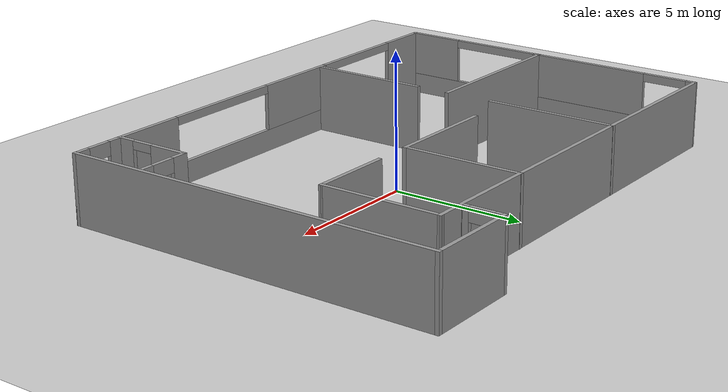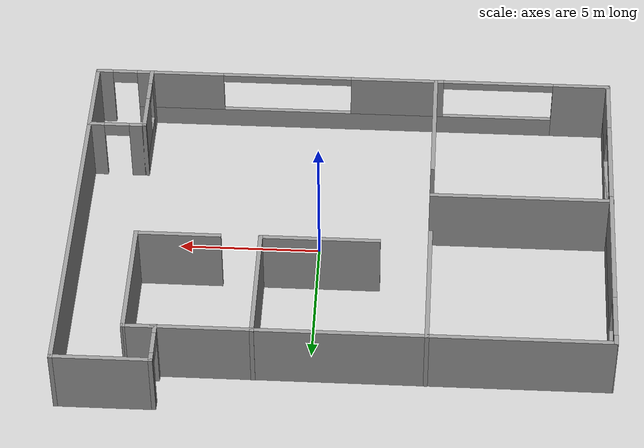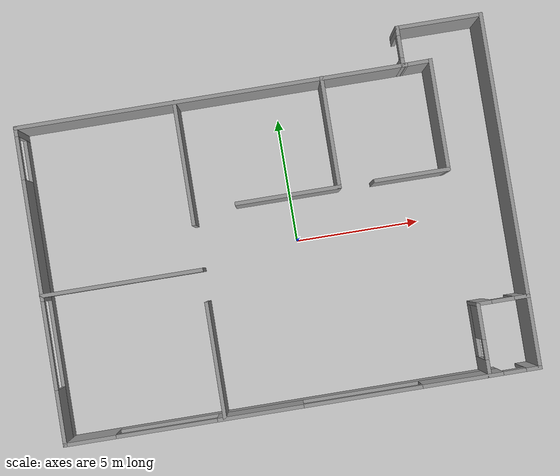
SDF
<?xml version="1.0" ?>
<sdf version="1.6">
  <world name="default">
    <physics name="1ms" type="ignored">
      <max_step_size>0.001</max_step_size>
      <real_time_factor>1.0</real_time_factor>
    </physics>
    <plugin
      filename="gz-sim-physics-system"
      name="gz::sim::systems::Physics">
    </plugin>
    <plugin
      filename="gz-sim-air-pressure-system"
      name="gz::sim::systems::AirPressure">
    </plugin>
    <plugin
      filename="gz-sim-altimeter-system"
      name="gz::sim::systems::Altimeter">
    </plugin>
    <plugin
      filename="gz-sim-imu-system"
      name="gz::sim::systems::Imu">
    </plugin>
    <plugin
      filename="gz-sim-sensors-system"
      name="gz::sim::systems::Sensors">
      <render_engine>ogre2</render_engine>
    </plugin>
    <plugin
      filename="gz-sim-magnetometer-system"
      name="gz::sim::systems::Magnetometer">
    </plugin>
    <plugin
      filename="gz-sim-forcetorque-system"
      name="gz::sim::systems::ForceTorque">
    </plugin>
    <plugin
      filename="gz-sim-user-commands-system"
      name="gz::sim::systems::UserCommands">
    </plugin>
    <plugin
      filename="gz-sim-scene-broadcaster-system"
      name="gz::sim::systems::SceneBroadcaster">
    </plugin>
    <plugin
      filename="xbot2_gz_clock"
      name="gz::sim::systems::GzClockPlugin">
    </plugin>

    <light type="directional" name="sun">
      <cast_shadows>true</cast_shadows>
      <pose>0 0 10 0 0 0</pose>
      <diffuse>0.8 0.8 0.8 1</diffuse>
      <specular>0.2 0.2 0.2 1</specular>
      <attenuation>
        <range>1000</range>
        <constant>0.9</constant>
        <linear>0.01</linear>
        <quadratic>0.001</quadratic>
      </attenuation>
      <direction>-0.5 0.1 -0.9</direction>
    </light>

    <model name="ground_plane">
      <static>true</static>
      <link name="link">
        <collision name="collision">
          <geometry>
            <plane>
              <normal>0 0 1</normal>
              <size>100 100</size>
            </plane>
          </geometry>
        </collision>
        <visual name="visual">
          <geometry>
            <plane>
              <normal>0 0 1</normal>
              <size>100 100</size>
            </plane>
          </geometry>
          <material>
            <ambient>0.8 0.8 0.8 1</ambient>
            <diffuse>0.8 0.8 0.8 1</diffuse>
            <specular>0.8 0.8 0.8 1</specular>
          </material>
        </visual>
      </link>
    </model>

    <model name='TrossenRoboticsOfficeBuilding'>
    <pose>-0.879095 0.576025 0 0 -0 0</pose>
    <link name='Wall_0'>
      <pose>-9.41899 -0.749926 0 0 -0 -1.5708</pose>
      <visual name='Wall_0_Visual_0'>
        <pose>-6.1662 0 1.25 0 -0 0</pose>
        <geometry>
          <box>
            <size>0.417592 0.15 2.5</size>
          </box>
        </geometry>
        <material>
          <script>
            <uri>file://media/materials/scripts/gazebo.material</uri>
            <name>Gazebo/Grey</name>
          </script>
          <ambient>1 1 1 1</ambient>
        </material>
        <meta>
          <layer>0</layer>
        </meta>
      </visual>
      <collision name='Wall_0_Collision_0'>
        <geometry>
          <box>
            <size>0.417592 0.15 2.5</size>
          </box>
        </geometry>
        <pose>-6.1662 0 1.25 0 -0 0</pose>
      </collision>
      <visual name='Wall_0_Visual_1'>
        <pose>0.208796 0 0.4 0 -0 0</pose>
        <geometry>
          <box>
            <size>12.3324 0.15 0.8</size>
          </box>
        </geometry>
        <material>
          <script>
            <uri>file://media/materials/scripts/gazebo.material</uri>
            <name>Gazebo/Grey</name>
          </script>
          <ambient>1 1 1 1</ambient>
        </material>
        <meta>
          <layer>0</layer>
        </meta>
      </visual>
      <collision name='Wall_0_Collision_1'>
        <geometry>
          <box>
            <size>12.3324 0.15 0.8</size>
          </box>
        </geometry>
        <pose>0.208796 0 0.4 0 -0 0</pose>
      </collision>
      <visual name='Wall_0_Visual_2'>
        <pose>-1.80949 0 1.65 0 -0 0</pose>
        <geometry>
          <box>
            <size>4.84784 0.15 1.7</size>
          </box>
        </geometry>
        <material>
          <script>
            <uri>file://media/materials/scripts/gazebo.material</uri>
            <name>Gazebo/Grey</name>
          </script>
          <ambient>1 1 1 1</ambient>
        </material>
        <meta>
          <layer>0</layer>
        </meta>
      </visual>
      <collision name='Wall_0_Collision_2'>
        <geometry>
          <box>
            <size>4.84784 0.15 1.7</size>
          </box>
        </geometry>
        <pose>-1.80949 0 1.65 0 -0 0</pose>
      </collision>
      <visual name='Wall_0_Visual_3'>
        <pose>5.25622 0 1.65 0 -0 0</pose>
        <geometry>
          <box>
            <size>2.23757 0.15 1.7</size>
          </box>
        </geometry>
        <material>
          <script>
            <uri>file://media/materials/scripts/gazebo.material</uri>
            <name>Gazebo/Grey</name>
          </script>
          <ambient>1 1 1 1</ambient>
        </material>
        <meta>
          <layer>0</layer>
        </meta>
      </visual>
      <collision name='Wall_0_Collision_3'>
        <geometry>
          <box>
            <size>2.23757 0.15 1.7</size>
          </box>
        </geometry>
        <pose>5.25622 0 1.65 0 -0 0</pose>
      </collision>
      <visual name='Wall_0_Visual_4'>
        <pose>2.37593 0 0.8 0 -0 0</pose>
        <geometry>
          <box>
            <size>3.523 0.15 0</size>
          </box>
        </geometry>
        <material>
          <script>
            <uri>file://media/materials/scripts/gazebo.material</uri>
            <name>Gazebo/Grey</name>
          </script>
          <ambient>1 1 1 1</ambient>
        </material>
        <meta>
          <layer>0</layer>
        </meta>
      </visual>
      <collision name='Wall_0_Collision_4'>
        <geometry>
          <box>
            <size>3.523 0.15 0</size>
          </box>
        </geometry>
        <pose>2.37593 0 0.8 0 -0 0</pose>
      </collision>
      <visual name='Wall_0_Visual_5'>
        <pose>-5.09541 0 2.35 0 -0 0</pose>
        <geometry>
          <box>
            <size>1.724 0.15 0.3</size>
          </box>
        </geometry>
        <material>
          <script>
            <uri>file://media/materials/scripts/gazebo.material</uri>
            <name>Gazebo/Grey</name>
          </script>
          <ambient>1 1 1 1</ambient>
        </material>
        <meta>
          <layer>0</layer>
        </meta>
      </visual>
      <collision name='Wall_0_Collision_5'>
        <geometry>
          <box>
            <size>1.724 0.15 0.3</size>
          </box>
        </geometry>
        <pose>-5.09541 0 2.35 0 -0 0</pose>
      </collision>
      <visual name='Wall_0_Visual_6'>
        <pose>2.37593 0 2.35 0 -0 0</pose>
        <geometry>
          <box>
            <size>3.523 0.15 0.3</size>
          </box>
        </geometry>
        <material>
          <script>
            <uri>file://media/materials/scripts/gazebo.material</uri>
            <name>Gazebo/Grey</name>
          </script>
          <ambient>1 1 1 1</ambient>
        </material>
        <meta>
          <layer>0</layer>
        </meta>
      </visual>
      <collision name='Wall_0_Collision_6'>
        <geometry>
          <box>
            <size>3.523 0.15 0.3</size>
          </box>
        </geometry>
        <pose>2.37593 0 2.35 0 -0 0</pose>
      </collision>
    </link>
    <link name='Wall_1'>
      <pose>0.006011 -7.04993 0 0 -0 0</pose>
      <visual name='Wall_1_Visual_0'>
        <pose>-8.45251 0 1.25 0 -0 0</pose>
        <geometry>
          <box>
            <size>2.09499 0.15 2.5</size>
          </box>
        </geometry>
        <material>
          <script>
            <uri>file://media/materials/scripts/gazebo.material</uri>
            <name>Gazebo/Grey</name>
          </script>
          <ambient>1 1 1 1</ambient>
        </material>
        <meta>
          <layer>0</layer>
        </meta>
      </visual>
      <collision name='Wall_1_Collision_0'>
        <geometry>
          <box>
            <size>2.09499 0.15 2.5</size>
          </box>
        </geometry>
        <pose>-8.45251 0 1.25 0 -0 0</pose>
      </collision>
      <visual name='Wall_1_Visual_1'>
        <pose>9.18754 0 1.25 0 -0 0</pose>
        <geometry>
          <box>
            <size>0.624916 0.15 2.5</size>
          </box>
        </geometry>
        <material>
          <script>
            <uri>file://media/materials/scripts/gazebo.material</uri>
            <name>Gazebo/Grey</name>
          </script>
          <ambient>1 1 1 1</ambient>
        </material>
        <meta>
          <layer>0</layer>
        </meta>
      </visual>
      <collision name='Wall_1_Collision_1'>
        <geometry>
          <box>
            <size>0.624916 0.15 2.5</size>
          </box>
        </geometry>
        <pose>9.18754 0 1.25 0 -0 0</pose>
      </collision>
      <visual name='Wall_1_Visual_2'>
        <pose>0.285035 0 0.4 0 -0 0</pose>
        <geometry>
          <box>
            <size>15.3801 0.15 0.8</size>
          </box>
        </geometry>
        <material>
          <script>
            <uri>file://media/materials/scripts/gazebo.material</uri>
            <name>Gazebo/Grey</name>
          </script>
          <ambient>1 1 1 1</ambient>
        </material>
        <meta>
          <layer>0</layer>
        </meta>
      </visual>
      <collision name='Wall_1_Collision_2'>
        <geometry>
          <box>
            <size>15.3801 0.15 0.8</size>
          </box>
        </geometry>
        <pose>0.285035 0 0.4 0 -0 0</pose>
      </collision>
      <visual name='Wall_1_Visual_3'>
        <pose>-1.67035 0 1.65 0 -0 0</pose>
        <geometry>
          <box>
            <size>3.42869 0.15 1.7</size>
          </box>
        </geometry>
        <material>
          <script>
            <uri>file://media/materials/scripts/gazebo.material</uri>
            <name>Gazebo/Grey</name>
          </script>
          <ambient>1 1 1 1</ambient>
        </material>
        <meta>
          <layer>0</layer>
        </meta>
      </visual>
      <collision name='Wall_1_Collision_3'>
        <geometry>
          <box>
            <size>3.42869 0.15 1.7</size>
          </box>
        </geometry>
        <pose>-1.67035 0 1.65 0 -0 0</pose>
      </collision>
      <visual name='Wall_1_Visual_4'>
        <pose>6.36821 0 1.65 0 -0 0</pose>
        <geometry>
          <box>
            <size>3.21375 0.15 1.7</size>
          </box>
        </geometry>
        <material>
          <script>
            <uri>file://media/materials/scripts/gazebo.material</uri>
            <name>Gazebo/Grey</name>
          </script>
          <ambient>1 1 1 1</ambient>
        </material>
        <meta>
          <layer>0</layer>
        </meta>
      </visual>
      <collision name='Wall_1_Collision_4'>
        <geometry>
          <box>
            <size>3.21375 0.15 1.7</size>
          </box>
        </geometry>
        <pose>6.36821 0 1.65 0 -0 0</pose>
      </collision>
      <visual name='Wall_1_Visual_5'>
        <pose>8.42508 0 2.25 0 -0 0</pose>
        <geometry>
          <box>
            <size>0.9 0.15 0.5</size>
          </box>
        </geometry>
        <material>
          <script>
            <uri>file://media/materials/scripts/gazebo.material</uri>
            <name>Gazebo/Grey</name>
          </script>
          <ambient>1 1 1 1</ambient>
        </material>
        <meta>
          <layer>0</layer>
        </meta>
      </visual>
      <collision name='Wall_1_Collision_5'>
        <geometry>
          <box>
            <size>0.9 0.15 0.5</size>
          </box>
        </geometry>
        <pose>8.42508 0 2.25 0 -0 0</pose>
      </collision>
      <visual name='Wall_1_Visual_6'>
        <pose>-5.39486 0 2.35 0 -0 0</pose>
        <geometry>
          <box>
            <size>4.02031 0.15 0.3</size>
          </box>
        </geometry>
        <material>
          <script>
            <uri>file://media/materials/scripts/gazebo.material</uri>
            <name>Gazebo/Grey</name>
          </script>
          <ambient>1 1 1 1</ambient>
        </material>
        <meta>
          <layer>0</layer>
        </meta>
      </visual>
      <collision name='Wall_1_Collision_6'>
        <geometry>
          <box>
            <size>4.02031 0.15 0.3</size>
          </box>
        </geometry>
        <pose>-5.39486 0 2.35 0 -0 0</pose>
      </collision>
      <visual name='Wall_1_Visual_7'>
        <pose>2.40266 0 2.35 0 -0 0</pose>
        <geometry>
          <box>
            <size>4.71734 0.15 0.3</size>
          </box>
        </geometry>
        <material>
          <script>
            <uri>file://media/materials/scripts/gazebo.material</uri>
            <name>Gazebo/Grey</name>
          </script>
          <ambient>1 1 1 1</ambient>
        </material>
        <meta>
          <layer>0</layer>
        </meta>
      </visual>
      <collision name='Wall_1_Collision_7'>
        <geometry>
          <box>
            <size>4.71734 0.15 0.3</size>
          </box>
        </geometry>
        <pose>2.40266 0 2.35 0 -0 0</pose>
      </collision>
    </link>
    <link name='Wall_10'>
      <collision name='Wall_10_Collision'>
        <geometry>
          <box>
            <size>6.5 0.15 2.5</size>
          </box>
        </geometry>
        <pose>0 0 1.25 0 -0 0</pose>
      </collision>
      <visual name='Wall_10_Visual'>
        <pose>0 0 1.25 0 -0 0</pose>
        <geometry>
          <box>
            <size>6.5 0.15 2.5</size>
          </box>
        </geometry>
        <material>
          <script>
            <uri>file://media/materials/scripts/gazebo.material</uri>
            <name>Gazebo/Grey</name>
          </script>
          <ambient>1 1 1 1</ambient>
        </material>
        <meta>
          <layer>0</layer>
        </meta>
      </visual>
      <pose>-6.2561 -1.14107 0 0 -0 0</pose>
    </link>
    <link name='Wall_15'>
      <collision name='Wall_15_Collision'>
        <geometry>
          <box>
            <size>4.709 0.15 2.5</size>
          </box>
        </geometry>
        <pose>0 0 1.25 0 -0 0</pose>
      </collision>
      <visual name='Wall_15_Visual'>
        <pose>0 0 1.25 0 -0 0</pose>
        <geometry>
          <box>
            <size>4.709 0.15 2.5</size>
          </box>
        </geometry>
        <material>
          <script>
            <uri>file://media/materials/scripts/gazebo.material</uri>
            <name>Gazebo/Grey</name>
          </script>
          <ambient>1 1 1 1</ambient>
        </material>
        <meta>
          <layer>0</layer>
        </meta>
      </visual>
      <pose>-3.08091 -4.77053 0 0 -0 -1.5708</pose>
    </link>
    <link name='Wall_18'>
      <collision name='Wall_18_Collision'>
        <geometry>
          <box>
            <size>5 0.15 2.5</size>
          </box>
        </geometry>
        <pose>0 0 1.25 0 -0 0</pose>
      </collision>
      <visual name='Wall_18_Visual'>
        <pose>0 0 1.25 0 -0 0</pose>
        <geometry>
          <box>
            <size>5 0.15 2.5</size>
          </box>
        </geometry>
        <material>
          <script>
            <uri>file://media/materials/scripts/gazebo.material</uri>
            <name>Gazebo/Grey</name>
          </script>
          <ambient>1 1 1 1</ambient>
        </material>
        <meta>
          <layer>0</layer>
        </meta>
      </visual>
      <pose>-3.0811 3.13393 0 0 -0 1.5708</pose>
    </link>
    <link name='Wall_2'>
      <collision name='Wall_2_Collision'>
        <geometry>
          <box>
            <size>14.25 0.15 2.5</size>
          </box>
        </geometry>
        <pose>0 0 1.25 0 -0 0</pose>
      </collision>
      <visual name='Wall_2_Visual'>
        <pose>0 0 1.25 0 -0 0</pose>
        <geometry>
          <box>
            <size>14.25 0.15 2.5</size>
          </box>
        </geometry>
        <material>
          <script>
            <uri>file://media/materials/scripts/gazebo.material</uri>
            <name>Gazebo/Grey</name>
          </script>
          <ambient>1 1 1 1</ambient>
        </material>
        <meta>
          <layer>0</layer>
        </meta>
      </visual>
      <pose>9.43105 2.5e-05 0 0 -0 1.57079</pose>
    </link>
    <link name='Wall_20'>
      <collision name='Wall_20_Collision'>
        <geometry>
          <box>
            <size>4.5 0.15 2.5</size>
          </box>
        </geometry>
        <pose>0 0 1.25 0 -0 0</pose>
      </collision>
      <visual name='Wall_20_Visual'>
        <pose>0 0 1.25 0 -0 0</pose>
        <geometry>
          <box>
            <size>4.5 0.15 2.5</size>
          </box>
        </geometry>
        <material>
          <script>
            <uri>file://media/materials/scripts/gazebo.material</uri>
            <name>Gazebo/Grey</name>
          </script>
          <ambient>1 1 1 1</ambient>
        </material>
        <meta>
          <layer>0</layer>
        </meta>
      </visual>
      <pose>2.81816 3.38641 0 0 -0 -1.5708</pose>
    </link>
    <link name='Wall_21'>
      <collision name='Wall_21_Collision'>
        <geometry>
          <box>
            <size>4.25 0.15 2.5</size>
          </box>
        </geometry>
        <pose>0 0 1.25 0 -0 0</pose>
      </collision>
      <visual name='Wall_21_Visual'>
        <pose>0 0 1.25 0 -0 0</pose>
        <geometry>
          <box>
            <size>4.25 0.15 2.5</size>
          </box>
        </geometry>
        <material>
          <script>
            <uri>file://media/materials/scripts/gazebo.material</uri>
            <name>Gazebo/Grey</name>
          </script>
          <ambient>1 1 1 1</ambient>
        </material>
        <meta>
          <layer>0</layer>
        </meta>
      </visual>
      <pose>0.768162 1.21141 0 0 -0 3.14159</pose>
    </link>
    <link name='Wall_24'>
      <collision name='Wall_24_Collision'>
        <geometry>
          <box>
            <size>4.5 0.15 2.5</size>
          </box>
        </geometry>
        <pose>0 0 1.25 0 -0 0</pose>
      </collision>
      <visual name='Wall_24_Visual'>
        <pose>0 0 1.25 0 -0 0</pose>
        <geometry>
          <box>
            <size>4.5 0.15 2.5</size>
          </box>
        </geometry>
        <material>
          <script>
            <uri>file://media/materials/scripts/gazebo.material</uri>
            <name>Gazebo/Grey</name>
          </script>
          <ambient>1 1 1 1</ambient>
        </material>
        <meta>
          <layer>0</layer>
        </meta>
      </visual>
      <pose>7.16816 3.38641 0 0 -0 1.5708</pose>
    </link>
    <link name='Wall_25'>
      <collision name='Wall_25_Collision'>
        <geometry>
          <box>
            <size>1.13722 0.15 2.5</size>
          </box>
        </geometry>
        <pose>0 0 1.25 0 -0 0</pose>
      </collision>
      <visual name='Wall_25_Visual'>
        <pose>0 0 1.25 0 -0 0</pose>
        <geometry>
          <box>
            <size>1.13722 0.15 2.5</size>
          </box>
        </geometry>
        <material>
          <script>
            <uri>file://media/materials/scripts/gazebo.material</uri>
            <name>Gazebo/Grey</name>
          </script>
          <ambient>1 1 1 1</ambient>
        </material>
        <meta>
          <layer>0</layer>
        </meta>
      </visual>
      <pose>6.67459 5.55574 0 0 -0 -3.13011</pose>
    </link>
    <link name='Wall_27'>
      <collision name='Wall_27_Collision'>
        <geometry>
          <box>
            <size>3.04868 0.15 2.5</size>
          </box>
        </geometry>
        <pose>0 0 1.25 0 -0 0</pose>
      </collision>
      <visual name='Wall_27_Visual'>
        <pose>0 0 1.25 0 -0 0</pose>
        <geometry>
          <box>
            <size>3.04868 0.15 2.5</size>
          </box>
        </geometry>
        <material>
          <script>
            <uri>file://media/materials/scripts/gazebo.material</uri>
            <name>Gazebo/Grey</name>
          </script>
          <ambient>1 1 1 1</ambient>
        </material>
        <meta>
          <layer>0</layer>
        </meta>
      </visual>
      <pose>5.71882 1.21452 0 0 -0 -0.002145</pose>
    </link>
    <link name='Wall_3'>
      <collision name='Wall_3_Collision'>
        <geometry>
          <box>
            <size>3.5 0.15 2.5</size>
          </box>
        </geometry>
        <pose>0 0 1.25 0 -0 0</pose>
      </collision>
      <visual name='Wall_3_Visual'>
        <pose>0 0 1.25 0 -0 0</pose>
        <geometry>
          <box>
            <size>3.5 0.15 2.5</size>
          </box>
        </geometry>
        <material>
          <script>
            <uri>file://media/materials/scripts/gazebo.material</uri>
            <name>Gazebo/Grey</name>
          </script>
          <ambient>1 1 1 1</ambient>
        </material>
        <meta>
          <layer>0</layer>
        </meta>
      </visual>
      <pose>7.7561 7.04997 0 0 -0 3.14159</pose>
    </link>
    <link name='Wall_31'>
      <pose>6.0811 6.29948 0 0 -0 -1.5708</pose>
      <visual name='Wall_31_Visual_0'>
        <pose>-0.636014 0 1.25 0 -0 0</pose>
        <geometry>
          <box>
            <size>0.378971 0.15 2.5</size>
          </box>
        </geometry>
        <material>
          <script>
            <uri>file://media/materials/scripts/gazebo.material</uri>
            <name>Gazebo/Grey</name>
          </script>
          <ambient>1 1 1 1</ambient>
        </material>
        <meta>
          <layer>0</layer>
        </meta>
      </visual>
      <collision name='Wall_31_Collision_0'>
        <geometry>
          <box>
            <size>0.378971 0.15 2.5</size>
          </box>
        </geometry>
        <pose>-0.636014 0 1.25 0 -0 0</pose>
      </collision>
      <visual name='Wall_31_Visual_1'>
        <pose>0.639486 0 1.25 0 -0 0</pose>
        <geometry>
          <box>
            <size>0.372029 0.15 2.5</size>
          </box>
        </geometry>
        <material>
          <script>
            <uri>file://media/materials/scripts/gazebo.material</uri>
            <name>Gazebo/Grey</name>
          </script>
          <ambient>1 1 1 1</ambient>
        </material>
        <meta>
          <layer>0</layer>
        </meta>
      </visual>
      <collision name='Wall_31_Collision_1'>
        <geometry>
          <box>
            <size>0.372029 0.15 2.5</size>
          </box>
        </geometry>
        <pose>0.639486 0 1.25 0 -0 0</pose>
      </collision>
      <visual name='Wall_31_Visual_2'>
        <pose>0.003471 0 2.25 0 -0 0</pose>
        <geometry>
          <box>
            <size>0.9 0.15 0.5</size>
          </box>
        </geometry>
        <material>
          <script>
            <uri>file://media/materials/scripts/gazebo.material</uri>
            <name>Gazebo/Grey</name>
          </script>
          <ambient>1 1 1 1</ambient>
        </material>
        <meta>
          <layer>0</layer>
        </meta>
      </visual>
      <collision name='Wall_31_Collision_2'>
        <geometry>
          <box>
            <size>0.9 0.15 0.5</size>
          </box>
        </geometry>
        <pose>0.003471 0 2.25 0 -0 0</pose>
      </collision>
    </link>
    <link name='Wall_33'>
      <pose>8.43109 -4.20702 0 0 -0 0</pose>
      <visual name='Wall_33_Visual_0'>
        <pose>-0.761405 0 1.25 0 -0 0</pose>
        <geometry>
          <box>
            <size>0.62319 0.15 2.5</size>
          </box>
        </geometry>
        <material>
          <script>
            <uri>file://media/materials/scripts/gazebo.material</uri>
            <name>Gazebo/Grey</name>
          </script>
          <ambient>1 1 1 1</ambient>
        </material>
        <meta>
          <layer>0</layer>
        </meta>
      </visual>
      <collision name='Wall_33_Collision_0'>
        <geometry>
          <box>
            <size>0.62319 0.15 2.5</size>
          </box>
        </geometry>
        <pose>-0.761405 0 1.25 0 -0 0</pose>
      </collision>
      <visual name='Wall_33_Visual_1'>
        <pose>0.761595 0 1.25 0 -0 0</pose>
        <geometry>
          <box>
            <size>0.62281 0.15 2.5</size>
          </box>
        </geometry>
        <material>
          <script>
            <uri>file://media/materials/scripts/gazebo.material</uri>
            <name>Gazebo/Grey</name>
          </script>
          <ambient>1 1 1 1</ambient>
        </material>
        <meta>
          <layer>0</layer>
        </meta>
      </visual>
      <collision name='Wall_33_Collision_1'>
        <geometry>
          <box>
            <size>0.62281 0.15 2.5</size>
          </box>
        </geometry>
        <pose>0.761595 0 1.25 0 -0 0</pose>
      </collision>
      <visual name='Wall_33_Visual_2'>
        <pose>0.00019 0 2.25 0 -0 0</pose>
        <geometry>
          <box>
            <size>0.9 0.15 0.5</size>
          </box>
        </geometry>
        <material>
          <script>
            <uri>file://media/materials/scripts/gazebo.material</uri>
            <name>Gazebo/Grey</name>
          </script>
          <ambient>1 1 1 1</ambient>
        </material>
        <meta>
          <layer>0</layer>
        </meta>
      </visual>
      <collision name='Wall_33_Collision_2'>
        <geometry>
          <box>
            <size>0.9 0.15 0.5</size>
          </box>
        </geometry>
        <pose>0.00019 0 2.25 0 -0 0</pose>
      </collision>
    </link>
    <link name='Wall_6'>
      <collision name='Wall_6_Collision'>
        <geometry>
          <box>
            <size>15.75 0.15 2.5</size>
          </box>
        </geometry>
        <pose>0 0 1.25 0 -0 0</pose>
      </collision>
      <visual name='Wall_6_Visual'>
        <pose>0 0 1.25 0 -0 0</pose>
        <geometry>
          <box>
            <size>15.75 0.15 2.5</size>
          </box>
        </geometry>
        <material>
          <script>
            <uri>file://media/materials/scripts/gazebo.material</uri>
            <name>Gazebo/Grey</name>
          </script>
          <ambient>1 1 1 1</ambient>
        </material>
        <meta>
          <layer>0</layer>
        </meta>
      </visual>
      <pose>-1.61899 5.55007 0 0 -0 0</pose>
    </link>
    <link name='Wall_8'>
      <pose>7.43326 -5.62667 0 0 -0 1.57091</pose>
      <visual name='Wall_8_Visual_0'>
        <pose>-1.14327 0 1.25 0 -0 0</pose>
        <geometry>
          <box>
            <size>0.702754 0.15 2.5</size>
          </box>
        </geometry>
        <material>
          <script>
            <uri>file://media/materials/scripts/gazebo.material</uri>
            <name>Gazebo/Grey</name>
          </script>
          <ambient>1 1 1 1</ambient>
        </material>
        <meta>
          <layer>0</layer>
        </meta>
      </visual>
      <collision name='Wall_8_Collision_0'>
        <geometry>
          <box>
            <size>0.702754 0.15 2.5</size>
          </box>
        </geometry>
        <pose>-1.14327 0 1.25 0 -0 0</pose>
      </collision>
      <visual name='Wall_8_Visual_1'>
        <pose>0.351377 0 0.4 0 -0 0</pose>
        <geometry>
          <box>
            <size>2.28653 0.15 0.8</size>
          </box>
        </geometry>
        <material>
          <script>
            <uri>file://media/materials/scripts/gazebo.material</uri>
            <name>Gazebo/Grey</name>
          </script>
          <ambient>1 1 1 1</ambient>
        </material>
        <meta>
          <layer>0</layer>
        </meta>
      </visual>
      <collision name='Wall_8_Collision_1'>
        <geometry>
          <box>
            <size>2.28653 0.15 0.8</size>
          </box>
        </geometry>
        <pose>0.351377 0 0.4 0 -0 0</pose>
      </collision>
      <visual name='Wall_8_Visual_2'>
        <pose>0.751377 0 1.65 0 -0 0</pose>
        <geometry>
          <box>
            <size>1.48653 0.15 1.7</size>
          </box>
        </geometry>
        <material>
          <script>
            <uri>file://media/materials/scripts/gazebo.material</uri>
            <name>Gazebo/Grey</name>
          </script>
          <ambient>1 1 1 1</ambient>
        </material>
        <meta>
          <layer>0</layer>
        </meta>
      </visual>
      <collision name='Wall_8_Collision_2'>
        <geometry>
          <box>
            <size>1.48653 0.15 1.7</size>
          </box>
        </geometry>
        <pose>0.751377 0 1.65 0 -0 0</pose>
      </collision>
      <visual name='Wall_8_Visual_3'>
        <pose>-0.39189 0 2.35 0 -0 0</pose>
        <geometry>
          <box>
            <size>0.8 0.15 0.3</size>
          </box>
        </geometry>
        <material>
          <script>
            <uri>file://media/materials/scripts/gazebo.material</uri>
            <name>Gazebo/Grey</name>
          </script>
          <ambient>1 1 1 1</ambient>
        </material>
        <meta>
          <layer>0</layer>
        </meta>
      </visual>
      <collision name='Wall_8_Collision_3'>
        <geometry>
          <box>
            <size>0.8 0.15 0.3</size>
          </box>
        </geometry>
        <pose>-0.39189 0 2.35 0 -0 0</pose>
      </collision>
    </link>
    <static>1</static>
  </model>
  </world>
</sdf>
